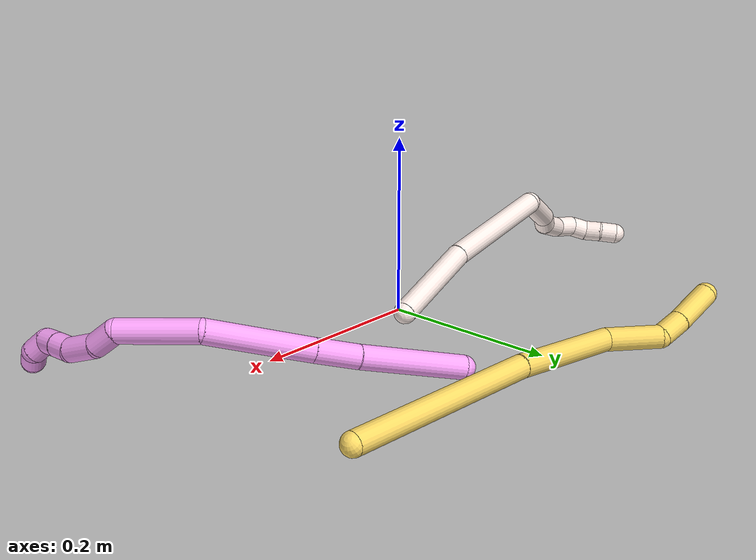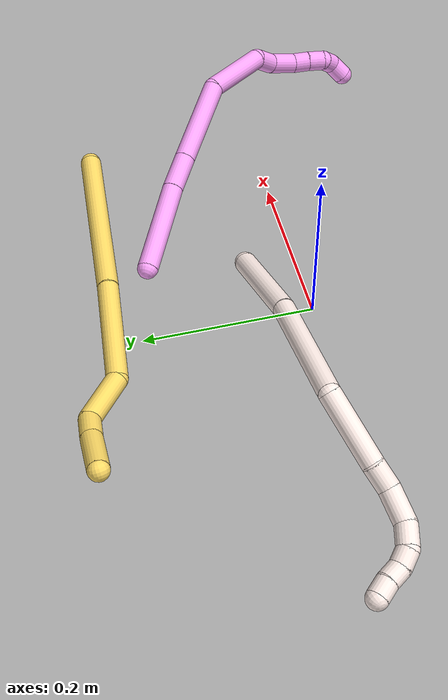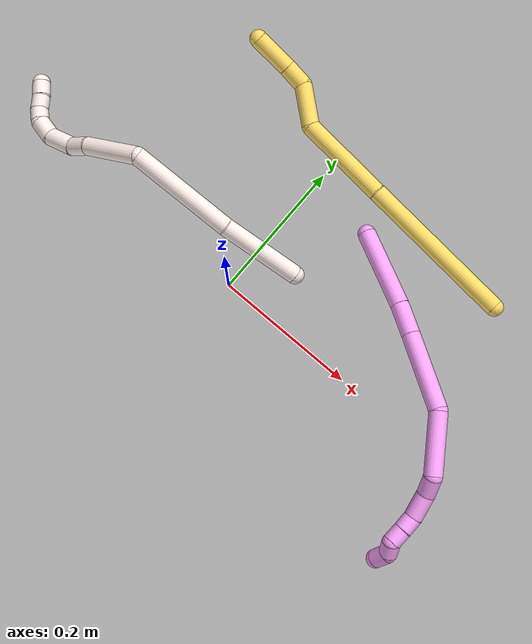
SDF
<sdf version="1.7">
 <world name="default">
  <model name="4">
   <static>0</static>
   <link name="4">
    <collision name="collision-cylinder-e_1_1_4">
     <pose>-0.00089 -0.000141 0.056537 0.002497 -0.015733 -2e-05</pose>
     <geometry><cylinder><radius>0.0125</radius><length>0.113089</length></cylinder></geometry>
     <surface>
      <friction><ode><mu>1.16</mu><mu2>1.16</mu2><slip1>0</slip1><slip2>0</slip2></ode></friction>
      <contact><ode><kp>1e+06</kp><kd>1</kd><max_vel>0</max_vel><min_depth>0.001</min_depth></ode></contact>
     </surface>
    </collision>
    <visual name="visual-cylinder-e_1_1_4">
     <pose>-0.00089 -0.000141 0.056537 0.002497 -0.015733 -2e-05</pose>
     <geometry><cylinder><radius>0.0125</radius><length>0.113089</length></cylinder></geometry>
     <material><ambient>1 0.65098 0.996078 1</ambient></material>
    </visual>
    <collision name="collision-cylinder-e_2_4_5">
     <pose>-0.001466 -0.001957 0.1356 0.074206 0.013869 0.000515</pose>
     <geometry><cylinder><radius>0.0125</radius><length>0.04518</length></cylinder></geometry>
     <surface>
      <friction><ode><mu>1.16</mu><mu2>1.16</mu2><slip1>0</slip1><slip2>0</slip2></ode></friction>
      <contact><ode><kp>1e+06</kp><kd>1</kd><max_vel>0</max_vel><min_depth>0.001</min_depth></ode></contact>
     </surface>
    </collision>
    <visual name="visual-cylinder-e_2_4_5">
     <pose>-0.001466 -0.001957 0.1356 0.074206 0.013869 0.000515</pose>
     <geometry><cylinder><radius>0.0125</radius><length>0.04518</length></cylinder></geometry>
     <material><ambient>1 0.65098 0.996078 1</ambient></material>
    </visual>
    <collision name="collision-cylinder-e_3_5_6">
     <pose>-0.000777 -0.008819 0.212443 0.09521 0.006874 0.000328</pose>
     <geometry><cylinder><radius>0.0125</radius><length>0.109132</length></cylinder></geometry>
     <surface>
      <friction><ode><mu>1.16</mu><mu2>1.16</mu2><slip1>0</slip1><slip2>0</slip2></ode></friction>
      <contact><ode><kp>1e+06</kp><kd>1</kd><max_vel>0</max_vel><min_depth>0.001</min_depth></ode></contact>
     </surface>
    </collision>
    <visual name="visual-cylinder-e_3_5_6">
     <pose>-0.000777 -0.008819 0.212443 0.09521 0.006874 0.000328</pose>
     <geometry><cylinder><radius>0.0125</radius><length>0.109132</length></cylinder></geometry>
     <material><ambient>1 0.65098 0.996078 1</ambient></material>
    </visual>
    <collision name="collision-cylinder-e_4_6_7">
     <pose>0.01921 -0.022594 0.30258 0.235317 0.48925 0.058996</pose>
     <geometry><cylinder><radius>0.0125</radius><length>0.083462</length></cylinder></geometry>
     <surface>
      <friction><ode><mu>1.16</mu><mu2>1.16</mu2><slip1>0</slip1><slip2>0</slip2></ode></friction>
      <contact><ode><kp>1e+06</kp><kd>1</kd><max_vel>0</max_vel><min_depth>0.001</min_depth></ode></contact>
     </surface>
    </collision>
    <visual name="visual-cylinder-e_4_6_7">
     <pose>0.01921 -0.022594 0.30258 0.235317 0.48925 0.058996</pose>
     <geometry><cylinder><radius>0.0125</radius><length>0.083462</length></cylinder></geometry>
     <material><ambient>1 0.65098 0.996078 1</ambient></material>
    </visual>
    <collision name="collision-cylinder-e_5_7_8">
     <pose>0.051656 -0.030441 0.344808 -0.115112 1.10509 -0.071027</pose>
     <geometry><cylinder><radius>0.0125</radius><length>0.028729</length></cylinder></geometry>
     <surface>
      <friction><ode><mu>1.16</mu><mu2>1.16</mu2><slip1>0</slip1><slip2>0</slip2></ode></friction>
      <contact><ode><kp>1e+06</kp><kd>1</kd><max_vel>0</max_vel><min_depth>0.001</min_depth></ode></contact>
     </surface>
    </collision>
    <visual name="visual-cylinder-e_5_7_8">
     <pose>0.051656 -0.030441 0.344808 -0.115112 1.10509 -0.071027</pose>
     <geometry><cylinder><radius>0.0125</radius><length>0.028729</length></cylinder></geometry>
     <material><ambient>1 0.65098 0.996078 1</ambient></material>
    </visual>
    <collision name="collision-cylinder-e_6_8_9">
     <pose>0.078614 -0.034892 0.360462 0.511633 0.926764 0.2599</pose>
     <geometry><cylinder><radius>0.0125</radius><length>0.03532</length></cylinder></geometry>
     <surface>
      <friction><ode><mu>1.16</mu><mu2>1.16</mu2><slip1>0</slip1><slip2>0</slip2></ode></friction>
      <contact><ode><kp>1e+06</kp><kd>1</kd><max_vel>0</max_vel><min_depth>0.001</min_depth></ode></contact>
     </surface>
    </collision>
    <visual name="visual-cylinder-e_6_8_9">
     <pose>0.078614 -0.034892 0.360462 0.511633 0.926764 0.2599</pose>
     <geometry><cylinder><radius>0.0125</radius><length>0.03532</length></cylinder></geometry>
     <material><ambient>1 0.65098 0.996078 1</ambient></material>
    </visual>
    <collision name="collision-cylinder-e_7_9_10">
     <pose>0.099472 -0.046585 0.374535 0.932056 0.693815 0.359751</pose>
     <geometry><cylinder><radius>0.0125</radius><length>0.021066</length></cylinder></geometry>
     <surface>
      <friction><ode><mu>1.16</mu><mu2>1.16</mu2><slip1>0</slip1><slip2>0</slip2></ode></friction>
      <contact><ode><kp>1e+06</kp><kd>1</kd><max_vel>0</max_vel><min_depth>0.001</min_depth></ode></contact>
     </surface>
    </collision>
    <visual name="visual-cylinder-e_7_9_10">
     <pose>0.099472 -0.046585 0.374535 0.932056 0.693815 0.359751</pose>
     <geometry><cylinder><radius>0.0125</radius><length>0.021066</length></cylinder></geometry>
     <material><ambient>1 0.65098 0.996078 1</ambient></material>
    </visual>
    <collision name="collision-cylinder-e_8_10_11">
     <pose>0.113278 -0.059433 0.38358 0.984281 0.748042 0.414815</pose>
     <geometry><cylinder><radius>0.0125</radius><length>0.020789</length></cylinder></geometry>
     <surface>
      <friction><ode><mu>1.16</mu><mu2>1.16</mu2><slip1>0</slip1><slip2>0</slip2></ode></friction>
      <contact><ode><kp>1e+06</kp><kd>1</kd><max_vel>0</max_vel><min_depth>0.001</min_depth></ode></contact>
     </surface>
    </collision>
    <visual name="visual-cylinder-e_8_10_11">
     <pose>0.113278 -0.059433 0.38358 0.984281 0.748042 0.414815</pose>
     <geometry><cylinder><radius>0.0125</radius><length>0.020789</length></cylinder></geometry>
     <material><ambient>1 0.65098 0.996078 1</ambient></material>
    </visual>
    <collision name="collision-cylinder-e_9_11_12">
     <pose>0.129372 -0.064513 0.392431 -0.266575 1.08166 -0.160701</pose>
     <geometry><cylinder><radius>0.0125</radius><length>0.020444</length></cylinder></geometry>
     <surface>
      <friction><ode><mu>1.16</mu><mu2>1.16</mu2><slip1>0</slip1><slip2>0</slip2></ode></friction>
      <contact><ode><kp>1e+06</kp><kd>1</kd><max_vel>0</max_vel><min_depth>0.001</min_depth></ode></contact>
     </surface>
    </collision>
    <visual name="visual-cylinder-e_9_11_12">
     <pose>0.129372 -0.064513 0.392431 -0.266575 1.08166 -0.160701</pose>
     <geometry><cylinder><radius>0.0125</radius><length>0.020444</length></cylinder></geometry>
     <material><ambient>1 0.65098 0.996078 1</ambient></material>
    </visual>
    <collision name="collision-cylinder-e_10_12_2">
     <pose>0.149605 -0.064784 0.395714 2.29192 1.39034 2.14764</pose>
     <geometry><cylinder><radius>0.0125</radius><length>0.022789</length></cylinder></geometry>
     <surface>
      <friction><ode><mu>1.16</mu><mu2>1.16</mu2><slip1>0</slip1><slip2>0</slip2></ode></friction>
      <contact><ode><kp>1e+06</kp><kd>1</kd><max_vel>0</max_vel><min_depth>0.001</min_depth></ode></contact>
     </surface>
    </collision>
    <visual name="visual-cylinder-e_10_12_2">
     <pose>0.149605 -0.064784 0.395714 2.29192 1.39034 2.14764</pose>
     <geometry><cylinder><radius>0.0125</radius><length>0.022789</length></cylinder></geometry>
     <material><ambient>1 0.65098 0.996078 1</ambient></material>
    </visual>
    <collision name="collision-sphere-2">
     <pose>0.160814 -0.06632 0.394364 0 -0 0</pose>
     <geometry><sphere><radius>0.0125</radius></sphere></geometry>
     <surface>
      <friction><ode><mu>1.16</mu><mu2>1.16</mu2><slip1>0</slip1><slip2>0</slip2></ode></friction>
      <contact><ode><kp>1e+06</kp><kd>1</kd><max_vel>0</max_vel><min_depth>0.001</min_depth></ode></contact>
     </surface>
    </collision>
    <visual name="visual-sphere-2">
     <pose>0.160814 -0.06632 0.394364 0 -0 0</pose>
     <geometry><sphere><radius>0.0125</radius></sphere></geometry>
     <material><ambient>1 0.65098 0.996078 1</ambient></material>
    </visual>
    <collision name="collision-sphere-12">
     <pose>0.138395 -0.063248 0.397064 0 -0 0</pose>
     <geometry><sphere><radius>0.0125</radius></sphere></geometry>
     <surface>
      <friction><ode><mu>1.16</mu><mu2>1.16</mu2><slip1>0</slip1><slip2>0</slip2></ode></friction>
      <contact><ode><kp>1e+06</kp><kd>1</kd><max_vel>0</max_vel><min_depth>0.001</min_depth></ode></contact>
     </surface>
    </collision>
    <visual name="visual-sphere-12">
     <pose>0.138395 -0.063248 0.397064 0 -0 0</pose>
     <geometry><sphere><radius>0.0125</radius></sphere></geometry>
     <material><ambient>1 0.65098 0.996078 1</ambient></material>
    </visual>
    <collision name="collision-sphere-11">
     <pose>0.120348 -0.065779 0.387798 0 -0 0</pose>
     <geometry><sphere><radius>0.0125</radius></sphere></geometry>
     <surface>
      <friction><ode><mu>1.16</mu><mu2>1.16</mu2><slip1>0</slip1><slip2>0</slip2></ode></friction>
      <contact><ode><kp>1e+06</kp><kd>1</kd><max_vel>0</max_vel><min_depth>0.001</min_depth></ode></contact>
     </surface>
    </collision>
    <visual name="visual-sphere-11">
     <pose>0.120348 -0.065779 0.387798 0 -0 0</pose>
     <geometry><sphere><radius>0.0125</radius></sphere></geometry>
     <material><ambient>1 0.65098 0.996078 1</ambient></material>
    </visual>
    <collision name="collision-sphere-10">
     <pose>0.106207 -0.053087 0.379363 0 -0 0</pose>
     <geometry><sphere><radius>0.0125</radius></sphere></geometry>
     <surface>
      <friction><ode><mu>1.16</mu><mu2>1.16</mu2><slip1>0</slip1><slip2>0</slip2></ode></friction>
      <contact><ode><kp>1e+06</kp><kd>1</kd><max_vel>0</max_vel><min_depth>0.001</min_depth></ode></contact>
     </surface>
    </collision>
    <visual name="visual-sphere-10">
     <pose>0.106207 -0.053087 0.379363 0 -0 0</pose>
     <geometry><sphere><radius>0.0125</radius></sphere></geometry>
     <material><ambient>1 0.65098 0.996078 1</ambient></material>
    </visual>
    <collision name="collision-sphere-9">
     <pose>0.092736 -0.040084 0.369708 0 -0 0</pose>
     <geometry><sphere><radius>0.0125</radius></sphere></geometry>
     <surface>
      <friction><ode><mu>1.16</mu><mu2>1.16</mu2><slip1>0</slip1><slip2>0</slip2></ode></friction>
      <contact><ode><kp>1e+06</kp><kd>1</kd><max_vel>0</max_vel><min_depth>0.001</min_depth></ode></contact>
     </surface>
    </collision>
    <visual name="visual-sphere-9">
     <pose>0.092736 -0.040084 0.369708 0 -0 0</pose>
     <geometry><sphere><radius>0.0125</radius></sphere></geometry>
     <material><ambient>1 0.65098 0.996078 1</ambient></material>
    </visual>
    <collision name="collision-sphere-4">
     <pose>-0.001779 -0.000282 0.113075 0 -0 0</pose>
     <geometry><sphere><radius>0.0125</radius></sphere></geometry>
     <surface>
      <friction><ode><mu>1.16</mu><mu2>1.16</mu2><slip1>0</slip1><slip2>0</slip2></ode></friction>
      <contact><ode><kp>1e+06</kp><kd>1</kd><max_vel>0</max_vel><min_depth>0.001</min_depth></ode></contact>
     </surface>
    </collision>
    <visual name="visual-sphere-4">
     <pose>-0.001779 -0.000282 0.113075 0 -0 0</pose>
     <geometry><sphere><radius>0.0125</radius></sphere></geometry>
     <material><ambient>1 0.65098 0.996078 1</ambient></material>
    </visual>
    <collision name="collision-sphere-1">
     <geometry><sphere><radius>0.0125</radius></sphere></geometry>
     <surface>
      <friction><ode><mu>1.16</mu><mu2>1.16</mu2><slip1>0</slip1><slip2>0</slip2></ode></friction>
      <contact><ode><kp>1e+06</kp><kd>1</kd><max_vel>0</max_vel><min_depth>0.001</min_depth></ode></contact>
     </surface>
    </collision>
    <visual name="visual-sphere-1">
     <geometry><sphere><radius>0.0125</radius></sphere></geometry>
     <material><ambient>1 0.65098 0.996078 1</ambient></material>
    </visual>
    <collision name="collision-sphere-8">
     <pose>0.064491 -0.029701 0.351216 0 -0 0</pose>
     <geometry><sphere><radius>0.0125</radius></sphere></geometry>
     <surface>
      <friction><ode><mu>1.16</mu><mu2>1.16</mu2><slip1>0</slip1><slip2>0</slip2></ode></friction>
      <contact><ode><kp>1e+06</kp><kd>1</kd><max_vel>0</max_vel><min_depth>0.001</min_depth></ode></contact>
     </surface>
    </collision>
    <visual name="visual-sphere-8">
     <pose>0.064491 -0.029701 0.351216 0 -0 0</pose>
     <geometry><sphere><radius>0.0125</radius></sphere></geometry>
     <material><ambient>1 0.65098 0.996078 1</ambient></material>
    </visual>
    <collision name="collision-sphere-5">
     <pose>-0.001153 -0.003632 0.158126 0 -0 0</pose>
     <geometry><sphere><radius>0.0125</radius></sphere></geometry>
     <surface>
      <friction><ode><mu>1.16</mu><mu2>1.16</mu2><slip1>0</slip1><slip2>0</slip2></ode></friction>
      <contact><ode><kp>1e+06</kp><kd>1</kd><max_vel>0</max_vel><min_depth>0.001</min_depth></ode></contact>
     </surface>
    </collision>
    <visual name="visual-sphere-5">
     <pose>-0.001153 -0.003632 0.158126 0 -0 0</pose>
     <geometry><sphere><radius>0.0125</radius></sphere></geometry>
     <material><ambient>1 0.65098 0.996078 1</ambient></material>
    </visual>
    <collision name="collision-sphere-6">
     <pose>-0.000402 -0.014006 0.26676 0 -0 0</pose>
     <geometry><sphere><radius>0.0125</radius></sphere></geometry>
     <surface>
      <friction><ode><mu>1.16</mu><mu2>1.16</mu2><slip1>0</slip1><slip2>0</slip2></ode></friction>
      <contact><ode><kp>1e+06</kp><kd>1</kd><max_vel>0</max_vel><min_depth>0.001</min_depth></ode></contact>
     </surface>
    </collision>
    <visual name="visual-sphere-6">
     <pose>-0.000402 -0.014006 0.26676 0 -0 0</pose>
     <geometry><sphere><radius>0.0125</radius></sphere></geometry>
     <material><ambient>1 0.65098 0.996078 1</ambient></material>
    </visual>
    <collision name="collision-sphere-7">
     <pose>0.038822 -0.031182 0.3384 0 -0 0</pose>
     <geometry><sphere><radius>0.0125</radius></sphere></geometry>
     <surface>
      <friction><ode><mu>1.16</mu><mu2>1.16</mu2><slip1>0</slip1><slip2>0</slip2></ode></friction>
      <contact><ode><kp>1e+06</kp><kd>1</kd><max_vel>0</max_vel><min_depth>0.001</min_depth></ode></contact>
     </surface>
    </collision>
    <visual name="visual-sphere-7">
     <pose>0.038822 -0.031182 0.3384 0 -0 0</pose>
     <geometry><sphere><radius>0.0125</radius></sphere></geometry>
     <material><ambient>1 0.65098 0.996078 1</ambient></material>
    </visual>
    <inertial>
     <pose>0.032234 -0.020143 0.233002 0 -0 0</pose>
     <mass>0.5</mass>
     <inertia><ixx>0.000317</ixx><ixy>0</ixy><ixz>0</ixz><iyy>0.00031</iyy><iyz>0</iyz><izz>2.1e-05</izz></inertia>
    </inertial>
   </link>
   <pose>0.098325 0.173544 0.011461 -1.20474 0.888951 -1.78056</pose>
  </model>
  <model name="5">
   <static>0</static>
   <link name="5">
    <collision name="collision-cylinder-e_1_1_4">
     <pose>-0.072454 0.047756 -0.06814 -2.53029 -0.716416 1.7409</pose>
     <geometry><cylinder><radius>0.0125</radius><length>0.220665</length></cylinder></geometry>
     <surface>
      <friction><ode><mu>1.16</mu><mu2>1.16</mu2><slip1>0</slip1><slip2>0</slip2></ode></friction>
      <contact><ode><kp>1e+06</kp><kd>1</kd><max_vel>0</max_vel><min_depth>0.001</min_depth></ode></contact>
     </surface>
    </collision>
    <visual name="visual-cylinder-e_1_1_4">
     <pose>-0.072454 0.047756 -0.06814 -2.53029 -0.716416 1.7409</pose>
     <geometry><cylinder><radius>0.0125</radius><length>0.220665</length></cylinder></geometry>
     <material><ambient>1 0.858824 0.4 1</ambient></material>
    </visual>
    <collision name="collision-cylinder-e_2_4_5">
     <pose>-0.183243 0.124337 -0.180504 -2.56396 -0.628106 1.65975</pose>
     <geometry><cylinder><radius>0.0125</radius><length>0.13048</length></cylinder></geometry>
     <surface>
      <friction><ode><mu>1.16</mu><mu2>1.16</mu2><slip1>0</slip1><slip2>0</slip2></ode></friction>
      <contact><ode><kp>1e+06</kp><kd>1</kd><max_vel>0</max_vel><min_depth>0.001</min_depth></ode></contact>
     </surface>
    </collision>
    <visual name="visual-cylinder-e_2_4_5">
     <pose>-0.183243 0.124337 -0.180504 -2.56396 -0.628106 1.65975</pose>
     <geometry><cylinder><radius>0.0125</radius><length>0.13048</length></cylinder></geometry>
     <material><ambient>1 0.858824 0.4 1</ambient></material>
    </visual>
    <collision name="collision-cylinder-e_3_5_6">
     <pose>-0.230176 0.179379 -0.237416 -2.02153 -0.287021 0.453032</pose>
     <geometry><cylinder><radius>0.0125</radius><length>0.060736</length></cylinder></geometry>
     <surface>
      <friction><ode><mu>1.16</mu><mu2>1.16</mu2><slip1>0</slip1><slip2>0</slip2></ode></friction>
      <contact><ode><kp>1e+06</kp><kd>1</kd><max_vel>0</max_vel><min_depth>0.001</min_depth></ode></contact>
     </surface>
    </collision>
    <visual name="visual-cylinder-e_3_5_6">
     <pose>-0.230176 0.179379 -0.237416 -2.02153 -0.287021 0.453032</pose>
     <geometry><cylinder><radius>0.0125</radius><length>0.060736</length></cylinder></geometry>
     <material><ambient>1 0.858824 0.4 1</ambient></material>
    </visual>
    <collision name="collision-cylinder-e_4_6_7">
     <pose>-0.251563 0.212992 -0.257091 -2.3278 -0.898776 1.68314</pose>
     <geometry><cylinder><radius>0.0125</radius><length>0.032687</length></cylinder></geometry>
     <surface>
      <friction><ode><mu>1.16</mu><mu2>1.16</mu2><slip1>0</slip1><slip2>0</slip2></ode></friction>
      <contact><ode><kp>1e+06</kp><kd>1</kd><max_vel>0</max_vel><min_depth>0.001</min_depth></ode></contact>
     </surface>
    </collision>
    <visual name="visual-cylinder-e_4_6_7">
     <pose>-0.251563 0.212992 -0.257091 -2.3278 -0.898776 1.68314</pose>
     <geometry><cylinder><radius>0.0125</radius><length>0.032687</length></cylinder></geometry>
     <material><ambient>1 0.858824 0.4 1</ambient></material>
    </visual>
    <collision name="collision-cylinder-e_5_7_2">
     <pose>-0.287312 0.231347 -0.275078 -2.35803 -0.976175 1.81906</pose>
     <geometry><cylinder><radius>0.0125</radius><length>0.055432</length></cylinder></geometry>
     <surface>
      <friction><ode><mu>1.16</mu><mu2>1.16</mu2><slip1>0</slip1><slip2>0</slip2></ode></friction>
      <contact><ode><kp>1e+06</kp><kd>1</kd><max_vel>0</max_vel><min_depth>0.001</min_depth></ode></contact>
     </surface>
    </collision>
    <visual name="visual-cylinder-e_5_7_2">
     <pose>-0.287312 0.231347 -0.275078 -2.35803 -0.976175 1.81906</pose>
     <geometry><cylinder><radius>0.0125</radius><length>0.055432</length></cylinder></geometry>
     <material><ambient>1 0.858824 0.4 1</ambient></material>
    </visual>
    <collision name="collision-sphere-2">
     <pose>-0.310271 0.242305 -0.286077 0 -0 0</pose>
     <geometry><sphere><radius>0.0125</radius></sphere></geometry>
     <surface>
      <friction><ode><mu>1.16</mu><mu2>1.16</mu2><slip1>0</slip1><slip2>0</slip2></ode></friction>
      <contact><ode><kp>1e+06</kp><kd>1</kd><max_vel>0</max_vel><min_depth>0.001</min_depth></ode></contact>
     </surface>
    </collision>
    <visual name="visual-sphere-2">
     <pose>-0.310271 0.242305 -0.286077 0 -0 0</pose>
     <geometry><sphere><radius>0.0125</radius></sphere></geometry>
     <material><ambient>1 0.858824 0.4 1</ambient></material>
    </visual>
    <collision name="collision-sphere-7">
     <pose>-0.264353 0.220388 -0.264079 0 -0 0</pose>
     <geometry><sphere><radius>0.0125</radius></sphere></geometry>
     <surface>
      <friction><ode><mu>1.16</mu><mu2>1.16</mu2><slip1>0</slip1><slip2>0</slip2></ode></friction>
      <contact><ode><kp>1e+06</kp><kd>1</kd><max_vel>0</max_vel><min_depth>0.001</min_depth></ode></contact>
     </surface>
    </collision>
    <visual name="visual-sphere-7">
     <pose>-0.264353 0.220388 -0.264079 0 -0 0</pose>
     <geometry><sphere><radius>0.0125</radius></sphere></geometry>
     <material><ambient>1 0.858824 0.4 1</ambient></material>
    </visual>
    <collision name="collision-sphere-6">
     <pose>-0.238773 0.205596 -0.250103 0 -0 0</pose>
     <geometry><sphere><radius>0.0125</radius></sphere></geometry>
     <surface>
      <friction><ode><mu>1.16</mu><mu2>1.16</mu2><slip1>0</slip1><slip2>0</slip2></ode></friction>
      <contact><ode><kp>1e+06</kp><kd>1</kd><max_vel>0</max_vel><min_depth>0.001</min_depth></ode></contact>
     </surface>
    </collision>
    <visual name="visual-sphere-6">
     <pose>-0.238773 0.205596 -0.250103 0 -0 0</pose>
     <geometry><sphere><radius>0.0125</radius></sphere></geometry>
     <material><ambient>1 0.858824 0.4 1</ambient></material>
    </visual>
    <collision name="collision-sphere-5">
     <pose>-0.221579 0.153162 -0.224728 0 -0 0</pose>
     <geometry><sphere><radius>0.0125</radius></sphere></geometry>
     <surface>
      <friction><ode><mu>1.16</mu><mu2>1.16</mu2><slip1>0</slip1><slip2>0</slip2></ode></friction>
      <contact><ode><kp>1e+06</kp><kd>1</kd><max_vel>0</max_vel><min_depth>0.001</min_depth></ode></contact>
     </surface>
    </collision>
    <visual name="visual-sphere-5">
     <pose>-0.221579 0.153162 -0.224728 0 -0 0</pose>
     <geometry><sphere><radius>0.0125</radius></sphere></geometry>
     <material><ambient>1 0.858824 0.4 1</ambient></material>
    </visual>
    <collision name="collision-sphere-1">
     <geometry><sphere><radius>0.0125</radius></sphere></geometry>
     <surface>
      <friction><ode><mu>1.16</mu><mu2>1.16</mu2><slip1>0</slip1><slip2>0</slip2></ode></friction>
      <contact><ode><kp>1e+06</kp><kd>1</kd><max_vel>0</max_vel><min_depth>0.001</min_depth></ode></contact>
     </surface>
    </collision>
    <visual name="visual-sphere-1">
     <geometry><sphere><radius>0.0125</radius></sphere></geometry>
     <material><ambient>1 0.858824 0.4 1</ambient></material>
    </visual>
    <collision name="collision-sphere-4">
     <pose>-0.144907 0.095512 -0.13628 0 -0 0</pose>
     <geometry><sphere><radius>0.0125</radius></sphere></geometry>
     <surface>
      <friction><ode><mu>1.16</mu><mu2>1.16</mu2><slip1>0</slip1><slip2>0</slip2></ode></friction>
      <contact><ode><kp>1e+06</kp><kd>1</kd><max_vel>0</max_vel><min_depth>0.001</min_depth></ode></contact>
     </surface>
    </collision>
    <visual name="visual-sphere-4">
     <pose>-0.144907 0.095512 -0.13628 0 -0 0</pose>
     <geometry><sphere><radius>0.0125</radius></sphere></geometry>
     <material><ambient>1 0.858824 0.4 1</ambient></material>
    </visual>
    <inertial>
     <pose>-0.156053 0.114885 -0.153319 0 -0 0</pose>
     <mass>0.5</mass>
     <inertia>
      <ixx>0.000708</ixx>
      <ixy>0</ixy>
      <ixz>0</ixz>
      <iyy>0.001409</iyy>
      <iyz>0</iyz>
      <izz>0.000204</izz>
     </inertia>
    </inertial>
   </link>
   <pose>0.29289 0.206793 0.011499 0.191692 0.715887 0.489456</pose>
  </model>
  <model name="11">
   <static>0</static>
   <link name="11">
    <collision name="collision-cylinder-e_1_1_4">
     <pose>0.000459 0.007063 0.056499 -0.12437 0.008061 -0.000502</pose>
     <geometry><cylinder><radius>0.0125</radius><length>0.113881</length></cylinder></geometry>
     <surface>
      <friction><ode><mu>1.16</mu><mu2>1.16</mu2><slip1>0</slip1><slip2>0</slip2></ode></friction>
      <contact><ode><kp>1e+06</kp><kd>1</kd><max_vel>0</max_vel><min_depth>0.001</min_depth></ode></contact>
     </surface>
    </collision>
    <visual name="visual-cylinder-e_1_1_4">
     <pose>0.000459 0.007063 0.056499 -0.12437 0.008061 -0.000502</pose>
     <geometry><cylinder><radius>0.0125</radius><length>0.113881</length></cylinder></geometry>
     <material><ambient>1 0.933333 0.909804 1</ambient></material>
    </visual>
    <collision name="collision-cylinder-e_2_4_5">
     <pose>-0.006844 0.016838 0.18622 -0.037014 -0.105544 0.001955</pose>
     <geometry><cylinder><radius>0.0125</radius><length>0.147366</length></cylinder></geometry>
     <surface>
      <friction><ode><mu>1.16</mu><mu2>1.16</mu2><slip1>0</slip1><slip2>0</slip2></ode></friction>
      <contact><ode><kp>1e+06</kp><kd>1</kd><max_vel>0</max_vel><min_depth>0.001</min_depth></ode></contact>
     </surface>
    </collision>
    <visual name="visual-cylinder-e_2_4_5">
     <pose>-0.006844 0.016838 0.18622 -0.037014 -0.105544 0.001955</pose>
     <geometry><cylinder><radius>0.0125</radius><length>0.147366</length></cylinder></geometry>
     <material><ambient>1 0.933333 0.909804 1</ambient></material>
    </visual>
    <collision name="collision-cylinder-e_3_5_6">
     <pose>-0.012195 -0.006893 0.291676 0.687012 0.057777 0.020671</pose>
     <geometry><cylinder><radius>0.0125</radius><length>0.083522</length></cylinder></geometry>
     <surface>
      <friction><ode><mu>1.16</mu><mu2>1.16</mu2><slip1>0</slip1><slip2>0</slip2></ode></friction>
      <contact><ode><kp>1e+06</kp><kd>1</kd><max_vel>0</max_vel><min_depth>0.001</min_depth></ode></contact>
     </surface>
    </collision>
    <visual name="visual-cylinder-e_3_5_6">
     <pose>-0.012195 -0.006893 0.291676 0.687012 0.057777 0.020671</pose>
     <geometry><cylinder><radius>0.0125</radius><length>0.083522</length></cylinder></geometry>
     <material><ambient>1 0.933333 0.909804 1</ambient></material>
    </visual>
    <collision name="collision-cylinder-e_4_6_7">
     <pose>-0.007955 -0.044488 0.333147 0.879079 0.125586 0.059113</pose>
     <geometry><cylinder><radius>0.0125</radius><length>0.029195</length></cylinder></geometry>
     <surface>
      <friction><ode><mu>1.16</mu><mu2>1.16</mu2><slip1>0</slip1><slip2>0</slip2></ode></friction>
      <contact><ode><kp>1e+06</kp><kd>1</kd><max_vel>0</max_vel><min_depth>0.001</min_depth></ode></contact>
     </surface>
    </collision>
    <visual name="visual-cylinder-e_4_6_7">
     <pose>-0.007955 -0.044488 0.333147 0.879079 0.125586 0.059113</pose>
     <geometry><cylinder><radius>0.0125</radius><length>0.029195</length></cylinder></geometry>
     <material><ambient>1 0.933333 0.909804 1</ambient></material>
    </visual>
    <collision name="collision-cylinder-e_5_7_8">
     <pose>-0.007654 -0.065431 0.35907 0.530562 -0.078798 -0.021418</pose>
     <geometry><cylinder><radius>0.0125</radius><length>0.038809</length></cylinder></geometry>
     <surface>
      <friction><ode><mu>1.16</mu><mu2>1.16</mu2><slip1>0</slip1><slip2>0</slip2></ode></friction>
      <contact><ode><kp>1e+06</kp><kd>1</kd><max_vel>0</max_vel><min_depth>0.001</min_depth></ode></contact>
     </surface>
    </collision>
    <visual name="visual-cylinder-e_5_7_8">
     <pose>-0.007654 -0.065431 0.35907 0.530562 -0.078798 -0.021418</pose>
     <geometry><cylinder><radius>0.0125</radius><length>0.038809</length></cylinder></geometry>
     <material><ambient>1 0.933333 0.909804 1</ambient></material>
    </visual>
    <collision name="collision-cylinder-e_6_8_9">
     <pose>-0.015116 -0.078043 0.387593 0.234164 -0.453711 -0.054287</pose>
     <geometry><cylinder><radius>0.0125</radius><length>0.027079</length></cylinder></geometry>
     <surface>
      <friction><ode><mu>1.16</mu><mu2>1.16</mu2><slip1>0</slip1><slip2>0</slip2></ode></friction>
      <contact><ode><kp>1e+06</kp><kd>1</kd><max_vel>0</max_vel><min_depth>0.001</min_depth></ode></contact>
     </surface>
    </collision>
    <visual name="visual-cylinder-e_6_8_9">
     <pose>-0.015116 -0.078043 0.387593 0.234164 -0.453711 -0.054287</pose>
     <geometry><cylinder><radius>0.0125</radius><length>0.027079</length></cylinder></geometry>
     <material><ambient>1 0.933333 0.909804 1</ambient></material>
    </visual>
    <collision name="collision-cylinder-e_7_9_10">
     <pose>-0.029093 -0.083551 0.40482 0.462073 -0.928127 -0.234402</pose>
     <geometry><cylinder><radius>0.0125</radius><length>0.020093</length></cylinder></geometry>
     <surface>
      <friction><ode><mu>1.16</mu><mu2>1.16</mu2><slip1>0</slip1><slip2>0</slip2></ode></friction>
      <contact><ode><kp>1e+06</kp><kd>1</kd><max_vel>0</max_vel><min_depth>0.001</min_depth></ode></contact>
     </surface>
    </collision>
    <visual name="visual-cylinder-e_7_9_10">
     <pose>-0.029093 -0.083551 0.40482 0.462073 -0.928127 -0.234402</pose>
     <geometry><cylinder><radius>0.0125</radius><length>0.020093</length></cylinder></geometry>
     <material><ambient>1 0.933333 0.909804 1</ambient></material>
    </visual>
    <collision name="collision-cylinder-e_8_10_11">
     <pose>-0.046256 -0.085553 0.414302 -0.165295 -1.14392 0.106548</pose>
     <geometry><cylinder><radius>0.0125</radius><length>0.020039</length></cylinder></geometry>
     <surface>
      <friction><ode><mu>1.16</mu><mu2>1.16</mu2><slip1>0</slip1><slip2>0</slip2></ode></friction>
      <contact><ode><kp>1e+06</kp><kd>1</kd><max_vel>0</max_vel><min_depth>0.001</min_depth></ode></contact>
     </surface>
    </collision>
    <visual name="visual-cylinder-e_8_10_11">
     <pose>-0.046256 -0.085553 0.414302 -0.165295 -1.14392 0.106548</pose>
     <geometry><cylinder><radius>0.0125</radius><length>0.020039</length></cylinder></geometry>
     <material><ambient>1 0.933333 0.909804 1</ambient></material>
    </visual>
    <collision name="collision-cylinder-e_9_11_2">
     <pose>-0.063938 -0.085366 0.423552 0.095905 -1.02649 -0.054083</pose>
     <geometry><cylinder><radius>0.0125</radius><length>0.020016</length></cylinder></geometry>
     <surface>
      <friction><ode><mu>1.16</mu><mu2>1.16</mu2><slip1>0</slip1><slip2>0</slip2></ode></friction>
      <contact><ode><kp>1e+06</kp><kd>1</kd><max_vel>0</max_vel><min_depth>0.001</min_depth></ode></contact>
     </surface>
    </collision>
    <visual name="visual-cylinder-e_9_11_2">
     <pose>-0.063938 -0.085366 0.423552 0.095905 -1.02649 -0.054083</pose>
     <geometry><cylinder><radius>0.0125</radius><length>0.020016</length></cylinder></geometry>
     <material><ambient>1 0.933333 0.909804 1</ambient></material>
    </visual>
    <collision name="collision-sphere-2">
     <pose>-0.0725 -0.085862 0.428711 0 -0 0</pose>
     <geometry><sphere><radius>0.0125</radius></sphere></geometry>
     <surface>
      <friction><ode><mu>1.16</mu><mu2>1.16</mu2><slip1>0</slip1><slip2>0</slip2></ode></friction>
      <contact><ode><kp>1e+06</kp><kd>1</kd><max_vel>0</max_vel><min_depth>0.001</min_depth></ode></contact>
     </surface>
    </collision>
    <visual name="visual-sphere-2">
     <pose>-0.0725 -0.085862 0.428711 0 -0 0</pose>
     <geometry><sphere><radius>0.0125</radius></sphere></geometry>
     <material><ambient>1 0.933333 0.909804 1</ambient></material>
    </visual>
    <collision name="collision-sphere-11">
     <pose>-0.055376 -0.08487 0.418394 0 -0 0</pose>
     <geometry><sphere><radius>0.0125</radius></sphere></geometry>
     <surface>
      <friction><ode><mu>1.16</mu><mu2>1.16</mu2><slip1>0</slip1><slip2>0</slip2></ode></friction>
      <contact><ode><kp>1e+06</kp><kd>1</kd><max_vel>0</max_vel><min_depth>0.001</min_depth></ode></contact>
     </surface>
    </collision>
    <visual name="visual-sphere-11">
     <pose>-0.055376 -0.08487 0.418394 0 -0 0</pose>
     <geometry><sphere><radius>0.0125</radius></sphere></geometry>
     <material><ambient>1 0.933333 0.909804 1</ambient></material>
    </visual>
    <collision name="collision-sphere-10">
     <pose>-0.037135 -0.086235 0.41021 0 -0 0</pose>
     <geometry><sphere><radius>0.0125</radius></sphere></geometry>
     <surface>
      <friction><ode><mu>1.16</mu><mu2>1.16</mu2><slip1>0</slip1><slip2>0</slip2></ode></friction>
      <contact><ode><kp>1e+06</kp><kd>1</kd><max_vel>0</max_vel><min_depth>0.001</min_depth></ode></contact>
     </surface>
    </collision>
    <visual name="visual-sphere-10">
     <pose>-0.037135 -0.086235 0.41021 0 -0 0</pose>
     <geometry><sphere><radius>0.0125</radius></sphere></geometry>
     <material><ambient>1 0.933333 0.909804 1</ambient></material>
    </visual>
    <collision name="collision-sphere-9">
     <pose>-0.021051 -0.080867 0.39943 0 -0 0</pose>
     <geometry><sphere><radius>0.0125</radius></sphere></geometry>
     <surface>
      <friction><ode><mu>1.16</mu><mu2>1.16</mu2><slip1>0</slip1><slip2>0</slip2></ode></friction>
      <contact><ode><kp>1e+06</kp><kd>1</kd><max_vel>0</max_vel><min_depth>0.001</min_depth></ode></contact>
     </surface>
    </collision>
    <visual name="visual-sphere-9">
     <pose>-0.021051 -0.080867 0.39943 0 -0 0</pose>
     <geometry><sphere><radius>0.0125</radius></sphere></geometry>
     <material><ambient>1 0.933333 0.909804 1</ambient></material>
    </visual>
    <collision name="collision-sphere-4">
     <pose>0.000918 0.014126 0.112997 0 -0 0</pose>
     <geometry><sphere><radius>0.0125</radius></sphere></geometry>
     <surface>
      <friction><ode><mu>1.16</mu><mu2>1.16</mu2><slip1>0</slip1><slip2>0</slip2></ode></friction>
      <contact><ode><kp>1e+06</kp><kd>1</kd><max_vel>0</max_vel><min_depth>0.001</min_depth></ode></contact>
     </surface>
    </collision>
    <visual name="visual-sphere-4">
     <pose>0.000918 0.014126 0.112997 0 -0 0</pose>
     <geometry><sphere><radius>0.0125</radius></sphere></geometry>
     <material><ambient>1 0.933333 0.909804 1</ambient></material>
    </visual>
    <collision name="collision-sphere-1">
     <geometry><sphere><radius>0.0125</radius></sphere></geometry>
     <surface>
      <friction><ode><mu>1.16</mu><mu2>1.16</mu2><slip1>0</slip1><slip2>0</slip2></ode></friction>
      <contact><ode><kp>1e+06</kp><kd>1</kd><max_vel>0</max_vel><min_depth>0.001</min_depth></ode></contact>
     </surface>
    </collision>
    <visual name="visual-sphere-1">
     <geometry><sphere><radius>0.0125</radius></sphere></geometry>
     <material><ambient>1 0.933333 0.909804 1</ambient></material>
    </visual>
    <collision name="collision-sphere-8">
     <pose>-0.009182 -0.075219 0.375755 0 -0 0</pose>
     <geometry><sphere><radius>0.0125</radius></sphere></geometry>
     <surface>
      <friction><ode><mu>1.16</mu><mu2>1.16</mu2><slip1>0</slip1><slip2>0</slip2></ode></friction>
      <contact><ode><kp>1e+06</kp><kd>1</kd><max_vel>0</max_vel><min_depth>0.001</min_depth></ode></contact>
     </surface>
    </collision>
    <visual name="visual-sphere-8">
     <pose>-0.009182 -0.075219 0.375755 0 -0 0</pose>
     <geometry><sphere><radius>0.0125</radius></sphere></geometry>
     <material><ambient>1 0.933333 0.909804 1</ambient></material>
    </visual>
    <collision name="collision-sphere-5">
     <pose>-0.014607 0.019549 0.259443 0 -0 0</pose>
     <geometry><sphere><radius>0.0125</radius></sphere></geometry>
     <surface>
      <friction><ode><mu>1.16</mu><mu2>1.16</mu2><slip1>0</slip1><slip2>0</slip2></ode></friction>
      <contact><ode><kp>1e+06</kp><kd>1</kd><max_vel>0</max_vel><min_depth>0.001</min_depth></ode></contact>
     </surface>
    </collision>
    <visual name="visual-sphere-5">
     <pose>-0.014607 0.019549 0.259443 0 -0 0</pose>
     <geometry><sphere><radius>0.0125</radius></sphere></geometry>
     <material><ambient>1 0.933333 0.909804 1</ambient></material>
    </visual>
    <collision name="collision-sphere-6">
     <pose>-0.009784 -0.033334 0.32391 0 -0 0</pose>
     <geometry><sphere><radius>0.0125</radius></sphere></geometry>
     <surface>
      <friction><ode><mu>1.16</mu><mu2>1.16</mu2><slip1>0</slip1><slip2>0</slip2></ode></friction>
      <contact><ode><kp>1e+06</kp><kd>1</kd><max_vel>0</max_vel><min_depth>0.001</min_depth></ode></contact>
     </surface>
    </collision>
    <visual name="visual-sphere-6">
     <pose>-0.009784 -0.033334 0.32391 0 -0 0</pose>
     <geometry><sphere><radius>0.0125</radius></sphere></geometry>
     <material><ambient>1 0.933333 0.909804 1</ambient></material>
    </visual>
    <collision name="collision-sphere-7">
     <pose>-0.006127 -0.055642 0.342385 0 -0 0</pose>
     <geometry><sphere><radius>0.0125</radius></sphere></geometry>
     <surface>
      <friction><ode><mu>1.16</mu><mu2>1.16</mu2><slip1>0</slip1><slip2>0</slip2></ode></friction>
      <contact><ode><kp>1e+06</kp><kd>1</kd><max_vel>0</max_vel><min_depth>0.001</min_depth></ode></contact>
     </surface>
    </collision>
    <visual name="visual-sphere-7">
     <pose>-0.006127 -0.055642 0.342385 0 -0 0</pose>
     <geometry><sphere><radius>0.0125</radius></sphere></geometry>
     <material><ambient>1 0.933333 0.909804 1</ambient></material>
    </visual>
    <inertial>
     <pose>-0.01141 -0.016687 0.234619 0 -0 0</pose>
     <mass>0.5</mass>
     <inertia><ixx>0.00046</ixx><ixy>0</ixy><ixz>0</ixz><iyy>0.000448</iyy><iyz>0</iyz><izz>7.7e-05</izz></inertia>
    </inertial>
   </link>
   <pose>0.062279 0.064412 0.031424 1.38277 -0.205551 -1.37074</pose>
  </model>
 </world>
</sdf>
